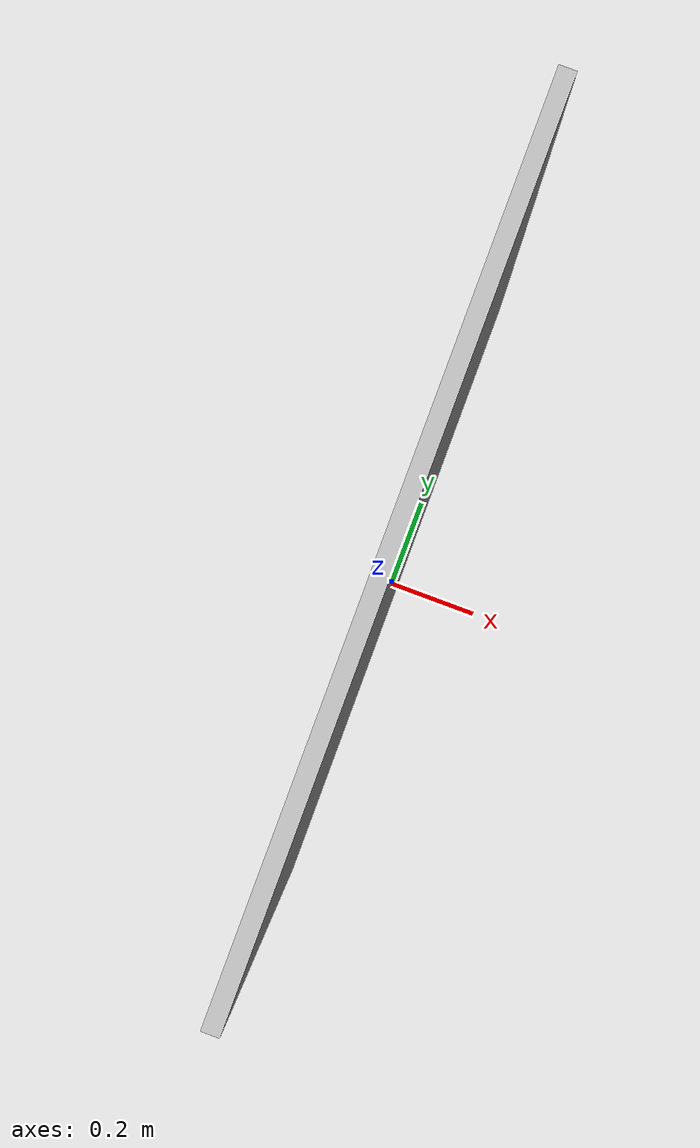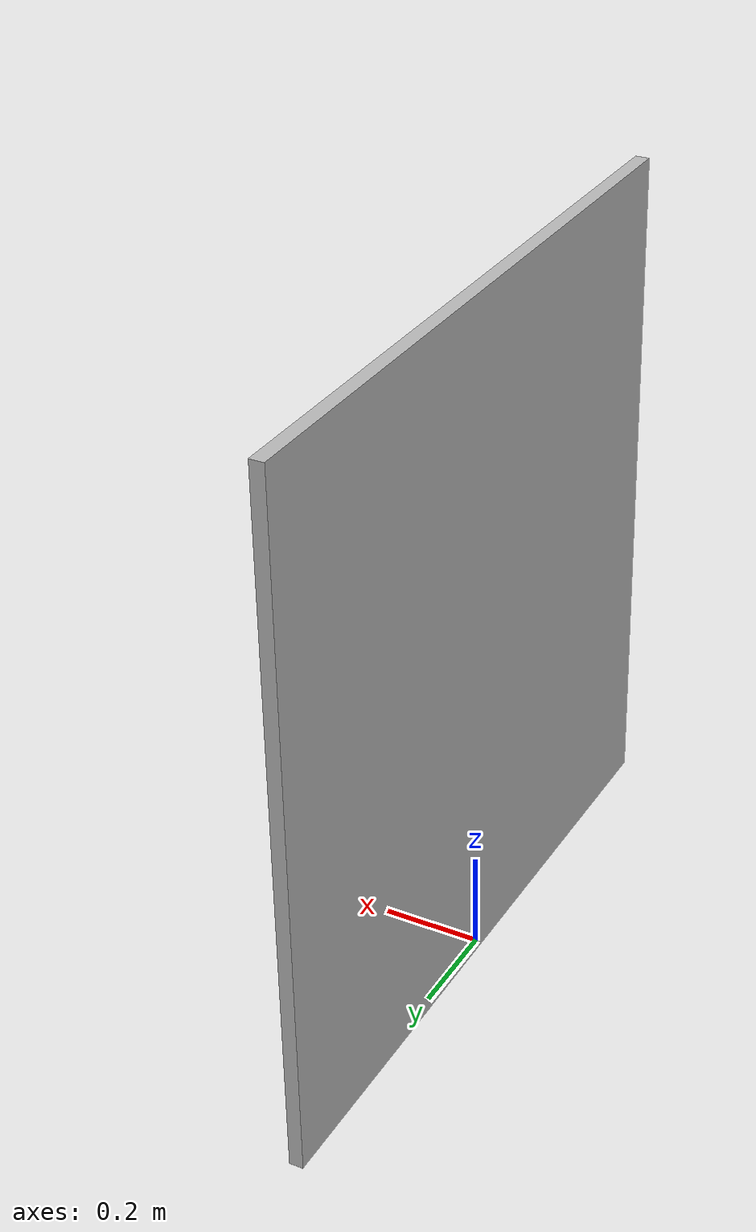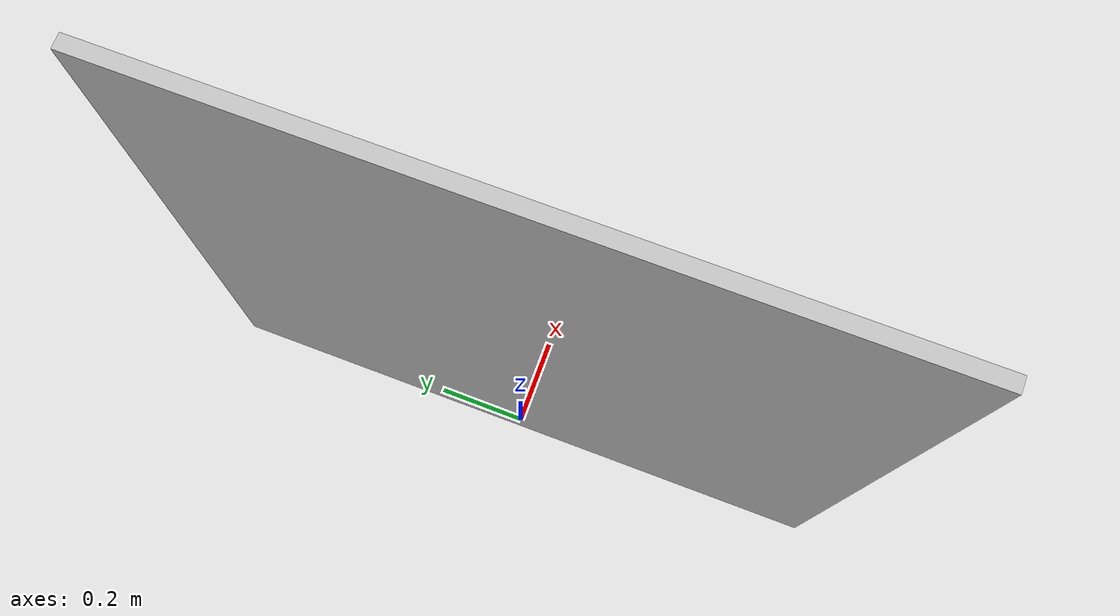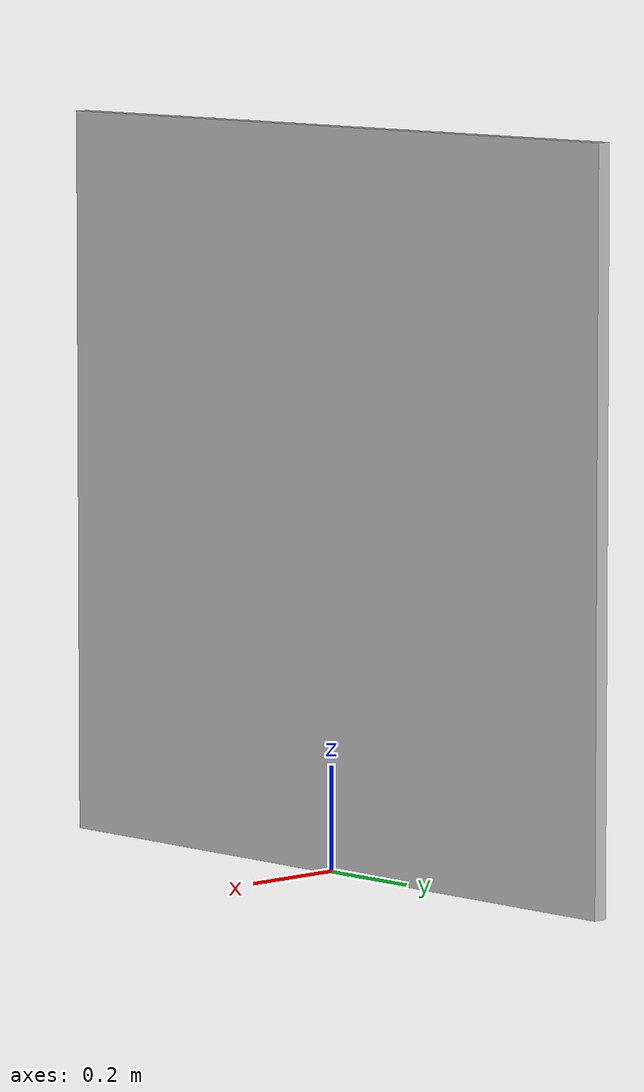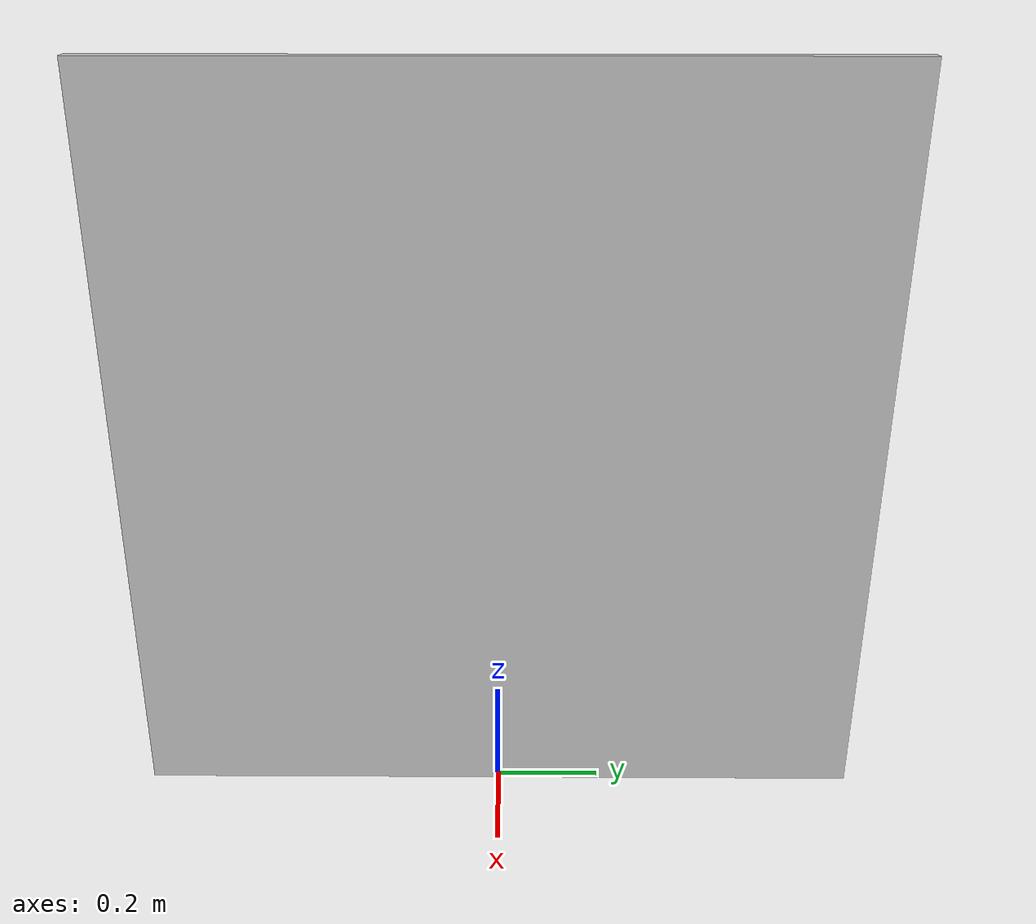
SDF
<?xml version="1.0" ?><sdf version="1.6">
  <model name="rubble_medium1">
    <static>true</static>
    <link name="link">
      <visual name="visual">
        <geometry>
          <mesh>
            <uri>model://rubble_medium1/meshes/rubble_medium1.dae</uri>
          <scale>2.8 2.8 2.8</scale></mesh>
        </geometry>
      </visual>
        <collision name="collision">
        <geometry>
          <mesh>
            <uri>model://rubble_large1/meshes/rubble_large1.dae</uri>
          <scale>2.8 2.8 2.8</scale></mesh>
        </geometry>
      </collision>
    </link>
  </model>
</sdf>
